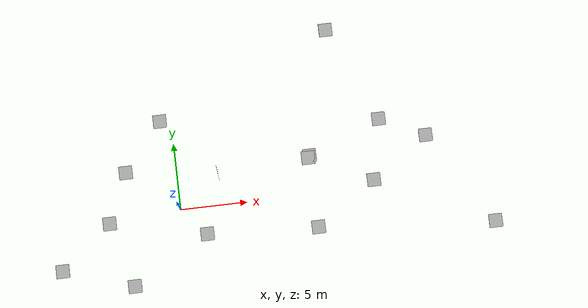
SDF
<sdf version="1.6">
 <world name="default">
  <light name="sun" type="directional">
   <pose>0 0 10 0 -0 0</pose>
   <diffuse>1 1 1 1</diffuse>
   <specular>0.2 0.2 0.2 1</specular>
   <attenuation>
    <range>1000</range>
    <constant>0.9</constant>
    <linear>0.01</linear>
    <quadratic>0.001</quadratic>
   </attenuation>
   <direction>-0.5 0.5 -1</direction>
  </light>
  <physics name="default_physics" default="0" type="ode">
   <max_step_size>0.001</max_step_size>
   <real_time_factor>1</real_time_factor>
   <real_time_update_rate>1000</real_time_update_rate>
  </physics>
  <scene>
   <ambient>1 1 1 1</ambient>
   <background>1 1 1 1</background>
   <shadows>1</shadows>
   <sky><clouds><speed>12</speed></clouds></sky>
  </scene>
  <spherical_coordinates>
   <surface_model>EARTH_WGS84</surface_model>
   <latitude_deg>43.5007</latitude_deg>
   <longitude_deg>-80.5468</longitude_deg>
   <elevation>329</elevation>
   <heading_deg>0</heading_deg>
  </spherical_coordinates>
  <gravity>0 0 -9.8</gravity>
  <magnetic_field>6e-06 2.3e-05 -4.2e-05</magnetic_field>
  <atmosphere type="adiabatic"/>
  <audio><device>default</device></audio>
  <model name="Apriltag36_11_00001">
   <link name="main">
    <pose>0 0 0.5 0 1.5707 0</pose>
    <visual name="main_Visual">
     <geometry><box><size>1 1 0.01</size></box></geometry>
     <material>
      <script>
       <uri>model://Apriltag36_11_00001/materials/scripts</uri>
       <uri>model://Apriltag36_11_00001/materials/textures</uri>
       <name>Apriltag36_11_00001</name>
      </script>
     </material>
    </visual>
   </link>
   <static>1</static>
   <pose>-3.78974 2.77337 4.8e-05 3.11405 1.5707 -1.59824</pose>
  </model>
  <model name="Apriltag36_11_00002">
   <link name="main">
    <pose>0 0 0.5 0 1.5707 0</pose>
    <visual name="main_Visual">
     <geometry><box><size>1 1 0.01</size></box></geometry>
     <material>
      <script>
       <uri>model://Apriltag36_11_00002/materials/scripts</uri>
       <uri>model://Apriltag36_11_00002/materials/textures</uri>
       <name>Apriltag36_11_00002</name>
      </script>
     </material>
    </visual>
   </link>
   <static>1</static>
   <pose>-1.3494 6.84137 4.7e-05 3.14159 1.5707 3.14159</pose>
  </model>
  <model name="Apriltag36_11_00003">
   <link name="main">
    <pose>0 0 0.5 0 1.5707 0</pose>
    <visual name="main_Visual">
     <geometry><box><size>1 1 0.01</size></box></geometry>
     <material>
      <script>
       <uri>model://Apriltag36_11_00003/materials/scripts</uri>
       <uri>model://Apriltag36_11_00003/materials/textures</uri>
       <name>Apriltag36_11_00003</name>
      </script>
     </material>
    </visual>
   </link>
   <static>1</static>
   <pose>-9.18977 -4.03098 4.8e-05 3.11405 1.5707 -1.59824</pose>
  </model>
  <model name="Apriltag36_11_00004">
   <link name="main">
    <pose>0 0 0.5 0 1.5707 0</pose>
    <visual name="main_Visual">
     <geometry><box><size>1 1 0.01</size></box></geometry>
     <material>
      <script>
       <uri>model://Apriltag36_11_00004/materials/scripts</uri>
       <uri>model://Apriltag36_11_00004/materials/textures</uri>
       <name>Apriltag36_11_00004</name>
      </script>
     </material>
    </visual>
   </link>
   <static>1</static>
   <pose>-3.98136 -5.75457 4.8e-05 3.11405 1.5707 -1.59824</pose>
  </model>
  <model name="Apriltag36_11_00006">
   <link name="main">
    <pose>0 0 0.5 0 1.5707 0</pose>
    <visual name="main_Visual">
     <geometry><box><size>1 1 0.01</size></box></geometry>
     <material>
      <script>
       <uri>model://Apriltag36_11_00006/materials/scripts</uri>
       <uri>model://Apriltag36_11_00006/materials/textures</uri>
       <name>Apriltag36_11_00006</name>
      </script>
     </material>
    </visual>
   </link>
   <static>1</static>
   <pose>1.78526 -2.5538 0.500048 3.11405 1.5707 -1.59824</pose>
  </model>
  <model name="Apriltag36_11_00007">
   <link name="main">
    <pose>0 0 0.5 0 1.5707 0</pose>
    <visual name="main_Visual">
     <geometry><box><size>1 1 0.01</size></box></geometry>
     <material>
      <script>
       <uri>model://Apriltag36_11_00007/materials/scripts</uri>
       <uri>model://Apriltag36_11_00007/materials/textures</uri>
       <name>Apriltag36_11_00007</name>
      </script>
     </material>
    </visual>
   </link>
   <static>1</static>
   <pose>23.1295 -4.07551 0.500048 3.11405 1.5707 -1.59824</pose>
  </model>
  <model name="Apriltag36_11_00008">
   <link name="main">
    <pose>0 0 0.5 0 1.5707 0</pose>
    <visual name="main_Visual">
     <geometry><box><size>1 1 0.01</size></box></geometry>
     <material>
      <script>
       <uri>model://Apriltag36_11_00008/materials/scripts</uri>
       <uri>model://Apriltag36_11_00008/materials/textures</uri>
       <name>Apriltag36_11_00008</name>
      </script>
     </material>
    </visual>
   </link>
   <static>1</static>
   <pose>15.454 4.5377 0.500048 3.11405 1.5707 -1.59824</pose>
  </model>
  <model name="Apriltag36_11_00009">
   <link name="main">
    <pose>0 0 0.5 0 1.5707 0</pose>
    <visual name="main_Visual">
     <geometry><box><size>1 1 0.01</size></box></geometry>
     <material>
      <script>
       <uri>model://Apriltag36_11_00009/materials/scripts</uri>
       <uri>model://Apriltag36_11_00009/materials/textures</uri>
       <name>Apriltag36_11_00009</name>
      </script>
     </material>
    </visual>
   </link>
   <static>1</static>
   <pose>9.99219 2.38366 0.500048 3.11405 1.5707 -1.59824</pose>
  </model>
  <model name="Apriltag36_11_00010">
   <link name="main">
    <pose>0 0 0.5 0 1.5707 0</pose>
    <visual name="main_Visual">
     <geometry><box><size>1 1 0.01</size></box></geometry>
     <material>
      <script>
       <uri>model://Apriltag36_11_00010/materials/scripts</uri>
       <uri>model://Apriltag36_11_00010/materials/textures</uri>
       <name>Apriltag36_11_00010</name>
      </script>
     </material>
    </visual>
   </link>
   <static>1</static>
   <pose>14.5366 0.023454 0.500048 3.11405 1.5707 -1.59824</pose>
  </model>
  <model name="Apriltag36_11_00011">
   <link name="main">
    <pose>0 0 0.5 0 1.5707 0</pose>
    <visual name="main_Visual">
     <geometry><box><size>1 1 0.01</size></box></geometry>
     <material>
      <script>
       <uri>model://Apriltag36_11_00011/materials/scripts</uri>
       <uri>model://Apriltag36_11_00011/materials/textures</uri>
       <name>Apriltag36_11_00011</name>
      </script>
     </material>
    </visual>
   </link>
   <static>1</static>
   <pose>-5.336 -0.961352 0.500048 3.11405 1.5707 -1.59824</pose>
  </model>
  <model name="Apriltag36_11_00012">
   <link name="main">
    <pose>0 0 0.5 0 1.5707 0</pose>
    <visual name="main_Visual">
     <geometry><box><size>1 1 0.01</size></box></geometry>
     <material>
      <script>
       <uri>model://Apriltag36_11_00012/materials/scripts</uri>
       <uri>model://Apriltag36_11_00012/materials/textures</uri>
       <name>Apriltag36_11_00012</name>
      </script>
     </material>
    </visual>
   </link>
   <static>1</static>
   <pose>9.8701 2.2314 0.500048 3.11405 1.5707 -1.59824</pose>
  </model>
  <model name="Apriltag36_11_00013">
   <link name="main">
    <pose>0 0 0.5 0 1.5707 0</pose>
    <visual name="main_Visual">
     <geometry><box><size>1 1 0.01</size></box></geometry>
     <material>
      <script>
       <uri>model://Apriltag36_11_00013/materials/scripts</uri>
       <uri>model://Apriltag36_11_00013/materials/textures</uri>
       <name>Apriltag36_11_00013</name>
      </script>
     </material>
    </visual>
   </link>
   <static>1</static>
   <pose>10.0306 -3.00513 0.500048 3.11405 1.5707 -1.59824</pose>
  </model>
  <model name="Apriltag36_11_00014">
   <link name="main">
    <pose>0 0 0.5 0 1.5707 0</pose>
    <visual name="main_Visual">
     <geometry><box><size>1 1 0.01</size></box></geometry>
     <material>
      <script>
       <uri>model://Apriltag36_11_00014/materials/scripts</uri>
       <uri>model://Apriltag36_11_00014/materials/textures</uri>
       <name>Apriltag36_11_00014</name>
      </script>
     </material>
    </visual>
   </link>
   <static>1</static>
   <pose>12.3202 11.7389 0.500048 3.11405 1.5707 -1.59824</pose>
  </model>
  <model name="Apriltag36_11_00015">
   <link name="main">
    <pose>0 0 0.5 0 1.5707 0</pose>
    <visual name="main_Visual">
     <geometry><box><size>1 1 0.01</size></box></geometry>
     <material>
      <script>
       <uri>model://Apriltag36_11_00015/materials/scripts</uri>
       <uri>model://Apriltag36_11_00015/materials/textures</uri>
       <name>Apriltag36_11_00015</name>
      </script>
     </material>
    </visual>
   </link>
   <static>1</static>
   <pose>18.7875 2.91365 0.500048 3.11405 1.5707 -1.59824</pose>
  </model>
  <model name="Apriltag36_11_00005_0">
   <link name="main">
    <pose>0 0 0.5 3.14159 0 -1.5707</pose>
    <visual name="main_Visual">
     <geometry><box><size>1 1 0.01</size></box></geometry>
     <material>
      <script>
       <uri>model://Apriltag36_11_00005/materials/scripts</uri>
       <uri>model://Apriltag36_11_00005/materials/textures</uri>
       <name>Apriltag36_11_00005</name>
      </script>
     </material>
    </visual>
   </link>
   <static>1</static>
   <pose>2.55935 2.30237 0.578006 -1.5663 0.0358 -1.4458</pose>
  </model>
 </world>
</sdf>
